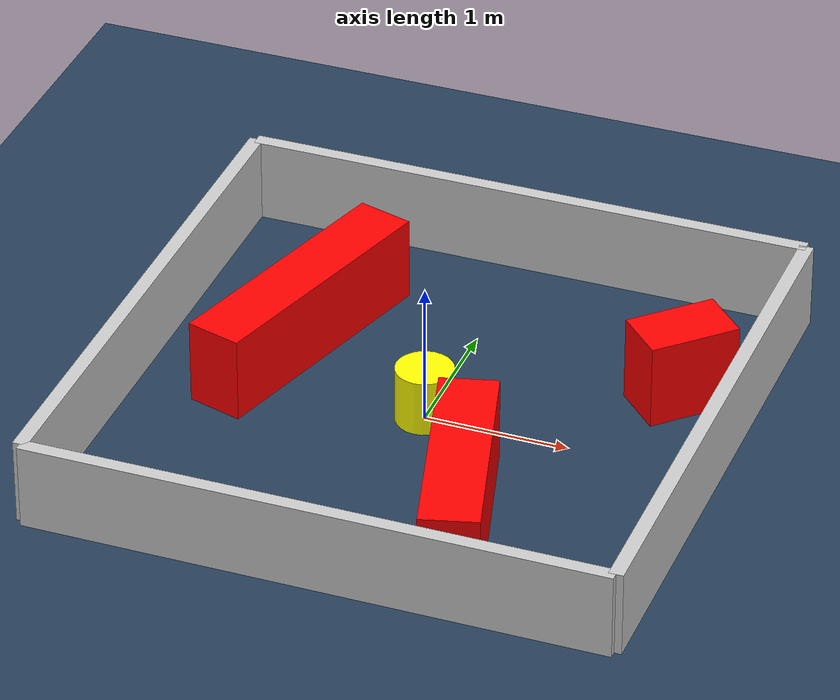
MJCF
<?xml version="1.0" ?>
<mujoco model="generated_environment">
  <option timestep="0.01" integrator="RK4" cone="elliptic"/>
  <default>
    <geom density="1"/>
  </default>
  <asset>
    <texture builtin="gradient" height="3072" rgb1="0.3 0.5 0.7" rgb2="0 0 0" type="skybox" width="512"/>
    <texture builtin="checker" height="300" mark="edge" markrgb="0.8 0.8 0.8" name="groundplane" rgb1="0.2 0.3 0.4" rgb2="0.1 0.2 0.3" type="2d" width="300"/>
    <material name="groundplane" reflectance="0.2" texrepeat="5 5" texture="groundplane" texuniform="true"/>
    <material name="robot" rgba="0.0 1.0 0.0 1"/>
  </asset>
  <worldbody>
    <light dir="0 0 -1" directional="true" pos="0 0 1.5"/>
    <geom condim="4" friction="1.0 0.005 0.001" material="groundplane" name="floor" size="0 0 0.05" type="plane"/>
    <body name="walls">
      <geom name="wall_1" condim="4" pos="-2.0 0.0 0.3" rgba="0.800000011920929 0.800000011920929 0.800000011920929 1.0" size="0.05 2.0 0.3" type="box"/>
      <geom name="wall_2" condim="4" pos="2.0 0.0 0.3" rgba="0.800000011920929 0.800000011920929 0.800000011920929 1.0" size="0.05 2.0 0.3" type="box"/>
      <geom name="wall_3" condim="4" pos="0.0 -2.0 0.3" rgba="0.800000011920929 0.800000011920929 0.800000011920929 1.0" size="2.0 0.05 0.3" type="box"/>
      <geom name="wall_4" condim="4" pos="0.0 2.0 0.3" rgba="0.800000011920929 0.800000011920929 0.800000011920929 1.0" size="2.0 0.05 0.3" type="box"/>
    </body>
    <body name="robot">
      <joint name="joint_x" type="slide" pos="0 0 0" axis="1 0 0"/>
      <joint name="joint_y" type="slide" pos="0 0 0" axis="0 1 0"/>
      <geom name="robot" type="sphere" pos="0.3 0.0 0.2" size="0.05" mass="5." friction="1.0 0.005 0.0001" condim="4" rgba="0.5 0.5 0.5 1.0"/>
      <site name="sensor_ball"/>
    </body>
    <body name="obstacle_movable_1">
      <geom name="obstacle_movable_1" condim="4" pos="0.0 0.0 0.2" euler="0 0 0.0" friction="1.0 0.005 0.001" rgba="1.0 1.0 0.0 1.0" size="0.2 0.2 0.0" type="cylinder" mass="0.1"/>
      <joint type="free"/>
    </body>
    <body name="obstacle_2_static">
      <geom name="obstacle_2_static" condim="4" pos="1.5148244023643955 0.7972677739139213 0.3" euler="0 0 224.38542327901314" friction="1.0 0.005 0.001" rgba="1 0 0 1" size="0.319948733918061 0.2 0.3" type="box"/>
    </body>
    <body name="obstacle_3_static">
      <geom name="obstacle_3_static" condim="4" pos="-1.0782313838044 0.5135456512829901 0.3" euler="0 0 73.68921828356508" friction="1.0 0.005 0.001" rgba="1 0 0 1" size="0.9386473336973777 0.2 0.3" type="box"/>
    </body>
    <body name="obstacle_4_static">
      <geom name="obstacle_4_static" condim="4" pos="0.6324594492174751 -1.0654220798835439 0.3" euler="0 0 105.46868068321285" friction="1.0 0.005 0.001" rgba="1 0 0 1" size="0.7947404702836853 0.2 0.3" type="box"/>
    </body>
  </worldbody>
  <actuator>
    <motor name="actuator_x" joint="joint_x" gear="1" ctrlrange="-1 1"/>
    <motor name="actuator_y" joint="joint_y" gear="1" ctrlrange="-1 1"/>
  </actuator>
</mujoco>
